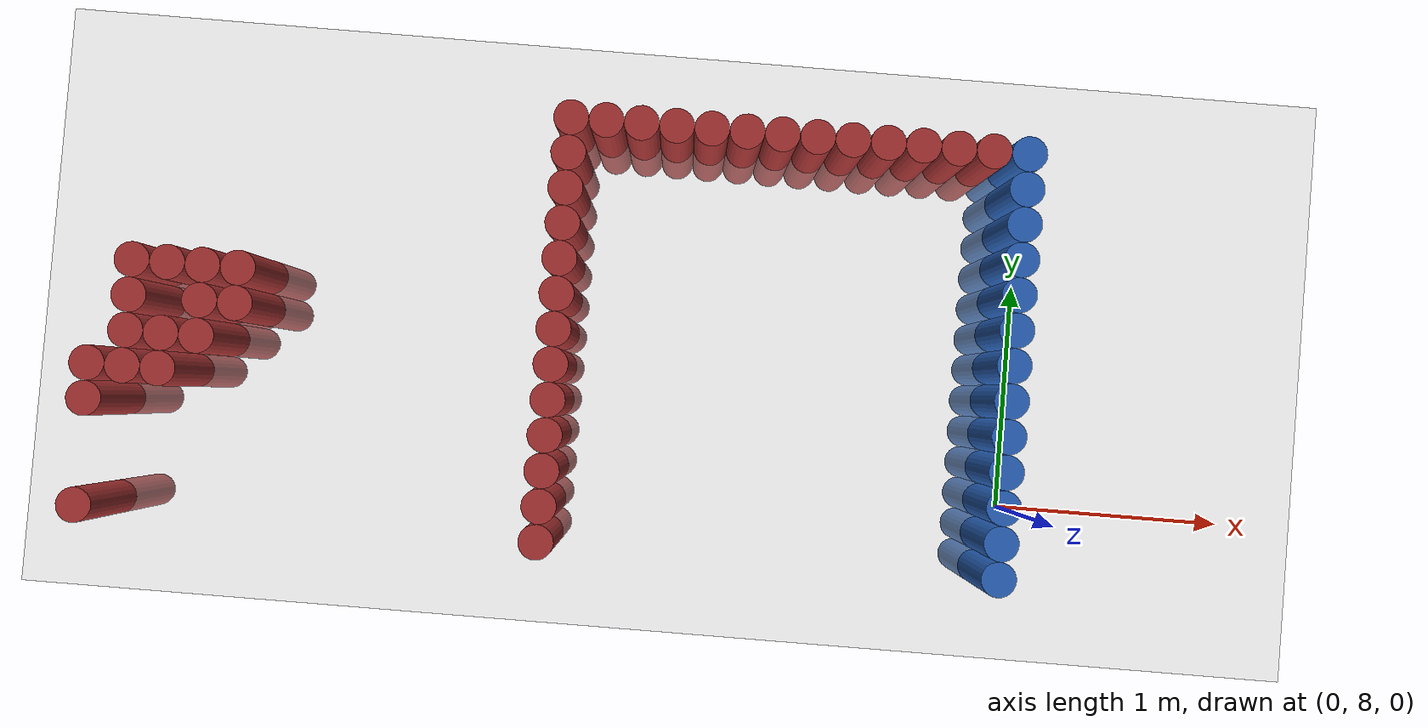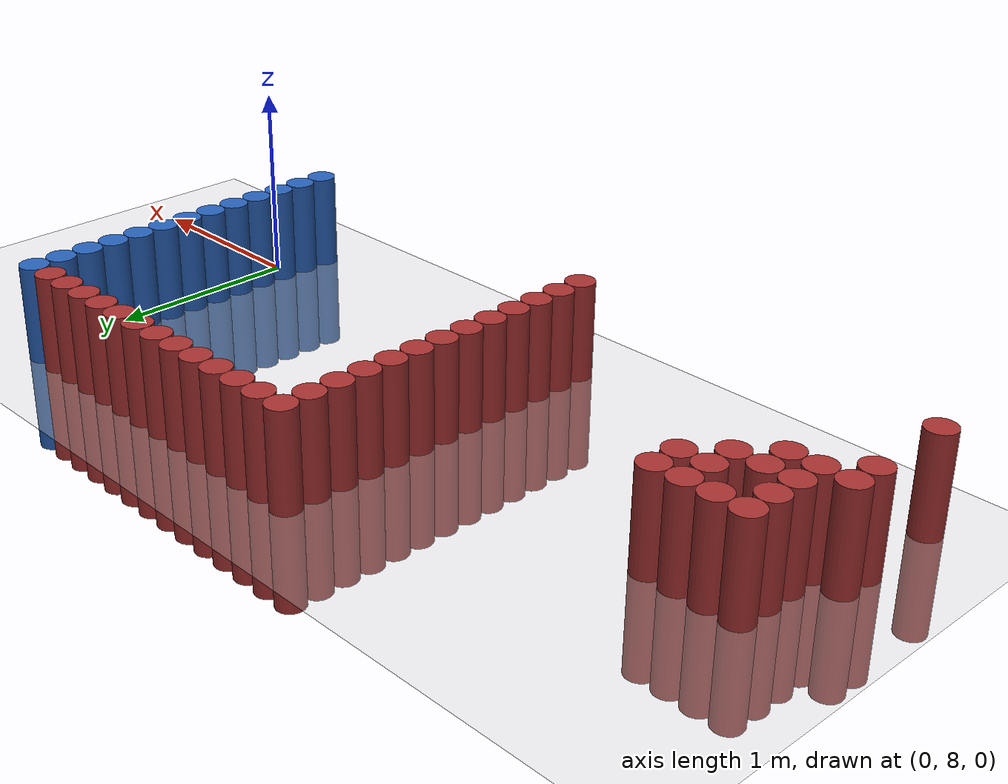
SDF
<sdf version="1.6">
 <world name="default">
  <model name="ground_plane">
   <static>1</static>
   <link name="link">
    <collision name="collision">
     <geometry><plane><normal>0 0 1</normal><size>100 100</size></plane></geometry>
     <surface><friction><ode><mu>100</mu><mu2>50</mu2></ode></friction></surface>
    </collision>
    <visual name="visual">
     <cast_shadows>0</cast_shadows>
     <geometry><plane><normal>0 0 1</normal><size>100 100</size></plane></geometry>
     <material>
      <script><uri>file://media/materials/scripts/gazebo.material</uri><name>Gazebo/Grey</name></script>
     </material>
    </visual>
   </link>
  </model>
  <model name="unit_cylinder_255">
   <static>1</static>
   <pose>-3.975000 7.725000 0.000000 0.000000 0.000000 0.000000</pose>
   <link name="link">
    <inertial>
     <mass>1</mass>
     <inertia><ixx>0.145833</ixx><ixy>0</ixy><ixz>0</ixz><iyy>0.145833</iyy><iyz>0</iyz><izz>0.125</izz></inertia>
    </inertial>
    <collision name="collision">
     <geometry><cylinder><radius>0.075000</radius><length>1</length></cylinder></geometry>
    </collision>
    <visual name="visual">
     <geometry><cylinder><radius>0.075000</radius><length>1</length></cylinder></geometry>
     <material>
      <ambient>0.648000 0.192000 0.192000 1</ambient>
      <diffuse>0.648000 0.192000 0.192000 1</diffuse>
     </material>
     <material>
      <script><name>Gazebo/Grey</name><uri>file://media/materials/scripts/gazebo.material</uri></script>
     </material>
    </visual>
   </link>
  </model>
  <model name="unit_cylinder_256">
   <static>1</static>
   <pose>-3.975000 8.175000 0.000000 0.000000 0.000000 0.000000</pose>
   <link name="link">
    <inertial>
     <mass>1</mass>
     <inertia><ixx>0.145833</ixx><ixy>0</ixy><ixz>0</ixz><iyy>0.145833</iyy><iyz>0</iyz><izz>0.125</izz></inertia>
    </inertial>
    <collision name="collision">
     <geometry><cylinder><radius>0.075000</radius><length>1</length></cylinder></geometry>
    </collision>
    <visual name="visual">
     <geometry><cylinder><radius>0.075000</radius><length>1</length></cylinder></geometry>
     <material>
      <ambient>0.648000 0.192000 0.192000 1</ambient>
      <diffuse>0.648000 0.192000 0.192000 1</diffuse>
     </material>
     <material>
      <script><name>Gazebo/Grey</name><uri>file://media/materials/scripts/gazebo.material</uri></script>
     </material>
    </visual>
   </link>
  </model>
  <model name="unit_cylinder_257">
   <static>1</static>
   <pose>-3.975000 8.325000 0.000000 0.000000 0.000000 0.000000</pose>
   <link name="link">
    <inertial>
     <mass>1</mass>
     <inertia><ixx>0.145833</ixx><ixy>0</ixy><ixz>0</ixz><iyy>0.145833</iyy><iyz>0</iyz><izz>0.125</izz></inertia>
    </inertial>
    <collision name="collision">
     <geometry><cylinder><radius>0.075000</radius><length>1</length></cylinder></geometry>
    </collision>
    <visual name="visual">
     <geometry><cylinder><radius>0.075000</radius><length>1</length></cylinder></geometry>
     <material>
      <ambient>0.648000 0.192000 0.192000 1</ambient>
      <diffuse>0.648000 0.192000 0.192000 1</diffuse>
     </material>
     <material>
      <script><name>Gazebo/Grey</name><uri>file://media/materials/scripts/gazebo.material</uri></script>
     </material>
    </visual>
   </link>
  </model>
  <model name="unit_cylinder_264">
   <static>1</static>
   <pose>-3.825000 8.325000 0.000000 0.000000 0.000000 0.000000</pose>
   <link name="link">
    <inertial>
     <mass>1</mass>
     <inertia><ixx>0.145833</ixx><ixy>0</ixy><ixz>0</ixz><iyy>0.145833</iyy><iyz>0</iyz><izz>0.125</izz></inertia>
    </inertial>
    <collision name="collision">
     <geometry><cylinder><radius>0.075000</radius><length>1</length></cylinder></geometry>
    </collision>
    <visual name="visual">
     <geometry><cylinder><radius>0.075000</radius><length>1</length></cylinder></geometry>
     <material>
      <ambient>0.648000 0.192000 0.192000 1</ambient>
      <diffuse>0.648000 0.192000 0.192000 1</diffuse>
     </material>
     <material>
      <script><name>Gazebo/Grey</name><uri>file://media/materials/scripts/gazebo.material</uri></script>
     </material>
    </visual>
   </link>
  </model>
  <model name="unit_cylinder_265">
   <static>1</static>
   <pose>-3.825000 8.475000 0.000000 0.000000 0.000000 0.000000</pose>
   <link name="link">
    <inertial>
     <mass>1</mass>
     <inertia><ixx>0.145833</ixx><ixy>0</ixy><ixz>0</ixz><iyy>0.145833</iyy><iyz>0</iyz><izz>0.125</izz></inertia>
    </inertial>
    <collision name="collision">
     <geometry><cylinder><radius>0.075000</radius><length>1</length></cylinder></geometry>
    </collision>
    <visual name="visual">
     <geometry><cylinder><radius>0.075000</radius><length>1</length></cylinder></geometry>
     <material>
      <ambient>0.648000 0.192000 0.192000 1</ambient>
      <diffuse>0.648000 0.192000 0.192000 1</diffuse>
     </material>
     <material>
      <script><name>Gazebo/Grey</name><uri>file://media/materials/scripts/gazebo.material</uri></script>
     </material>
    </visual>
   </link>
  </model>
  <model name="unit_cylinder_266">
   <static>1</static>
   <pose>-3.825000 8.625000 0.000000 0.000000 0.000000 0.000000</pose>
   <link name="link">
    <inertial>
     <mass>1</mass>
     <inertia><ixx>0.145833</ixx><ixy>0</ixy><ixz>0</ixz><iyy>0.145833</iyy><iyz>0</iyz><izz>0.125</izz></inertia>
    </inertial>
    <collision name="collision">
     <geometry><cylinder><radius>0.075000</radius><length>1</length></cylinder></geometry>
    </collision>
    <visual name="visual">
     <geometry><cylinder><radius>0.075000</radius><length>1</length></cylinder></geometry>
     <material>
      <ambient>0.648000 0.192000 0.192000 1</ambient>
      <diffuse>0.648000 0.192000 0.192000 1</diffuse>
     </material>
     <material>
      <script><name>Gazebo/Grey</name><uri>file://media/materials/scripts/gazebo.material</uri></script>
     </material>
    </visual>
   </link>
  </model>
  <model name="unit_cylinder_267">
   <static>1</static>
   <pose>-3.825000 8.775000 0.000000 0.000000 0.000000 0.000000</pose>
   <link name="link">
    <inertial>
     <mass>1</mass>
     <inertia><ixx>0.145833</ixx><ixy>0</ixy><ixz>0</ixz><iyy>0.145833</iyy><iyz>0</iyz><izz>0.125</izz></inertia>
    </inertial>
    <collision name="collision">
     <geometry><cylinder><radius>0.075000</radius><length>1</length></cylinder></geometry>
    </collision>
    <visual name="visual">
     <geometry><cylinder><radius>0.075000</radius><length>1</length></cylinder></geometry>
     <material>
      <ambient>0.648000 0.192000 0.192000 1</ambient>
      <diffuse>0.648000 0.192000 0.192000 1</diffuse>
     </material>
     <material>
      <script><name>Gazebo/Grey</name><uri>file://media/materials/scripts/gazebo.material</uri></script>
     </material>
    </visual>
   </link>
  </model>
  <model name="unit_cylinder_270">
   <static>1</static>
   <pose>-3.675000 8.325000 0.000000 0.000000 0.000000 0.000000</pose>
   <link name="link">
    <inertial>
     <mass>1</mass>
     <inertia><ixx>0.145833</ixx><ixy>0</ixy><ixz>0</ixz><iyy>0.145833</iyy><iyz>0</iyz><izz>0.125</izz></inertia>
    </inertial>
    <collision name="collision">
     <geometry><cylinder><radius>0.075000</radius><length>1</length></cylinder></geometry>
    </collision>
    <visual name="visual">
     <geometry><cylinder><radius>0.075000</radius><length>1</length></cylinder></geometry>
     <material>
      <ambient>0.648000 0.192000 0.192000 1</ambient>
      <diffuse>0.648000 0.192000 0.192000 1</diffuse>
     </material>
     <material>
      <script><name>Gazebo/Grey</name><uri>file://media/materials/scripts/gazebo.material</uri></script>
     </material>
    </visual>
   </link>
  </model>
  <model name="unit_cylinder_271">
   <static>1</static>
   <pose>-3.675000 8.475000 0.000000 0.000000 0.000000 0.000000</pose>
   <link name="link">
    <inertial>
     <mass>1</mass>
     <inertia><ixx>0.145833</ixx><ixy>0</ixy><ixz>0</ixz><iyy>0.145833</iyy><iyz>0</iyz><izz>0.125</izz></inertia>
    </inertial>
    <collision name="collision">
     <geometry><cylinder><radius>0.075000</radius><length>1</length></cylinder></geometry>
    </collision>
    <visual name="visual">
     <geometry><cylinder><radius>0.075000</radius><length>1</length></cylinder></geometry>
     <material>
      <ambient>0.648000 0.192000 0.192000 1</ambient>
      <diffuse>0.648000 0.192000 0.192000 1</diffuse>
     </material>
     <material>
      <script><name>Gazebo/Grey</name><uri>file://media/materials/scripts/gazebo.material</uri></script>
     </material>
    </visual>
   </link>
  </model>
  <model name="unit_cylinder_272">
   <static>1</static>
   <pose>-3.675000 8.775000 0.000000 0.000000 0.000000 0.000000</pose>
   <link name="link">
    <inertial>
     <mass>1</mass>
     <inertia><ixx>0.145833</ixx><ixy>0</ixy><ixz>0</ixz><iyy>0.145833</iyy><iyz>0</iyz><izz>0.125</izz></inertia>
    </inertial>
    <collision name="collision">
     <geometry><cylinder><radius>0.075000</radius><length>1</length></cylinder></geometry>
    </collision>
    <visual name="visual">
     <geometry><cylinder><radius>0.075000</radius><length>1</length></cylinder></geometry>
     <material>
      <ambient>0.648000 0.192000 0.192000 1</ambient>
      <diffuse>0.648000 0.192000 0.192000 1</diffuse>
     </material>
     <material>
      <script><name>Gazebo/Grey</name><uri>file://media/materials/scripts/gazebo.material</uri></script>
     </material>
    </visual>
   </link>
  </model>
  <model name="unit_cylinder_273">
   <static>1</static>
   <pose>-3.525000 8.475000 0.000000 0.000000 0.000000 0.000000</pose>
   <link name="link">
    <inertial>
     <mass>1</mass>
     <inertia><ixx>0.145833</ixx><ixy>0</ixy><ixz>0</ixz><iyy>0.145833</iyy><iyz>0</iyz><izz>0.125</izz></inertia>
    </inertial>
    <collision name="collision">
     <geometry><cylinder><radius>0.075000</radius><length>1</length></cylinder></geometry>
    </collision>
    <visual name="visual">
     <geometry><cylinder><radius>0.075000</radius><length>1</length></cylinder></geometry>
     <material>
      <ambient>0.648000 0.192000 0.192000 1</ambient>
      <diffuse>0.648000 0.192000 0.192000 1</diffuse>
     </material>
     <material>
      <script><name>Gazebo/Grey</name><uri>file://media/materials/scripts/gazebo.material</uri></script>
     </material>
    </visual>
   </link>
  </model>
  <model name="unit_cylinder_274">
   <static>1</static>
   <pose>-3.525000 8.625000 0.000000 0.000000 0.000000 0.000000</pose>
   <link name="link">
    <inertial>
     <mass>1</mass>
     <inertia><ixx>0.145833</ixx><ixy>0</ixy><ixz>0</ixz><iyy>0.145833</iyy><iyz>0</iyz><izz>0.125</izz></inertia>
    </inertial>
    <collision name="collision">
     <geometry><cylinder><radius>0.075000</radius><length>1</length></cylinder></geometry>
    </collision>
    <visual name="visual">
     <geometry><cylinder><radius>0.075000</radius><length>1</length></cylinder></geometry>
     <material>
      <ambient>0.648000 0.192000 0.192000 1</ambient>
      <diffuse>0.648000 0.192000 0.192000 1</diffuse>
     </material>
     <material>
      <script><name>Gazebo/Grey</name><uri>file://media/materials/scripts/gazebo.material</uri></script>
     </material>
    </visual>
   </link>
  </model>
  <model name="unit_cylinder_275">
   <static>1</static>
   <pose>-3.525000 8.775000 0.000000 0.000000 0.000000 0.000000</pose>
   <link name="link">
    <inertial>
     <mass>1</mass>
     <inertia><ixx>0.145833</ixx><ixy>0</ixy><ixz>0</ixz><iyy>0.145833</iyy><iyz>0</iyz><izz>0.125</izz></inertia>
    </inertial>
    <collision name="collision">
     <geometry><cylinder><radius>0.075000</radius><length>1</length></cylinder></geometry>
    </collision>
    <visual name="visual">
     <geometry><cylinder><radius>0.075000</radius><length>1</length></cylinder></geometry>
     <material>
      <ambient>0.648000 0.192000 0.192000 1</ambient>
      <diffuse>0.648000 0.192000 0.192000 1</diffuse>
     </material>
     <material>
      <script><name>Gazebo/Grey</name><uri>file://media/materials/scripts/gazebo.material</uri></script>
     </material>
    </visual>
   </link>
  </model>
  <model name="unit_cylinder_276">
   <static>1</static>
   <pose>-3.375000 8.625000 0.000000 0.000000 0.000000 0.000000</pose>
   <link name="link">
    <inertial>
     <mass>1</mass>
     <inertia><ixx>0.145833</ixx><ixy>0</ixy><ixz>0</ixz><iyy>0.145833</iyy><iyz>0</iyz><izz>0.125</izz></inertia>
    </inertial>
    <collision name="collision">
     <geometry><cylinder><radius>0.075000</radius><length>1</length></cylinder></geometry>
    </collision>
    <visual name="visual">
     <geometry><cylinder><radius>0.075000</radius><length>1</length></cylinder></geometry>
     <material>
      <ambient>0.648000 0.192000 0.192000 1</ambient>
      <diffuse>0.648000 0.192000 0.192000 1</diffuse>
     </material>
     <material>
      <script><name>Gazebo/Grey</name><uri>file://media/materials/scripts/gazebo.material</uri></script>
     </material>
    </visual>
   </link>
  </model>
  <model name="unit_cylinder_277">
   <static>1</static>
   <pose>-3.375000 8.775000 0.000000 0.000000 0.000000 0.000000</pose>
   <link name="link">
    <inertial>
     <mass>1</mass>
     <inertia><ixx>0.145833</ixx><ixy>0</ixy><ixz>0</ixz><iyy>0.145833</iyy><iyz>0</iyz><izz>0.125</izz></inertia>
    </inertial>
    <collision name="collision">
     <geometry><cylinder><radius>0.075000</radius><length>1</length></cylinder></geometry>
    </collision>
    <visual name="visual">
     <geometry><cylinder><radius>0.075000</radius><length>1</length></cylinder></geometry>
     <material>
      <ambient>0.648000 0.192000 0.192000 1</ambient>
      <diffuse>0.648000 0.192000 0.192000 1</diffuse>
     </material>
     <material>
      <script><name>Gazebo/Grey</name><uri>file://media/materials/scripts/gazebo.material</uri></script>
     </material>
    </visual>
   </link>
  </model>
  <model name="unit_cylinder_299">
   <static>1</static>
   <pose>-2.025000 7.725000 0.000000 0.000000 0.000000 0.000000</pose>
   <link name="link">
    <inertial>
     <mass>1</mass>
     <inertia><ixx>0.145833</ixx><ixy>0</ixy><ixz>0</ixz><iyy>0.145833</iyy><iyz>0</iyz><izz>0.125</izz></inertia>
    </inertial>
    <collision name="collision">
     <geometry><cylinder><radius>0.075000</radius><length>1</length></cylinder></geometry>
    </collision>
    <visual name="visual">
     <geometry><cylinder><radius>0.075000</radius><length>1</length></cylinder></geometry>
     <material>
      <ambient>0.648000 0.192000 0.192000 1</ambient>
      <diffuse>0.648000 0.192000 0.192000 1</diffuse>
     </material>
     <material>
      <script><name>Gazebo/Grey</name><uri>file://media/materials/scripts/gazebo.material</uri></script>
     </material>
    </visual>
   </link>
  </model>
  <model name="unit_cylinder_300">
   <static>1</static>
   <pose>-2.025000 7.875000 0.000000 0.000000 0.000000 0.000000</pose>
   <link name="link">
    <inertial>
     <mass>1</mass>
     <inertia><ixx>0.145833</ixx><ixy>0</ixy><ixz>0</ixz><iyy>0.145833</iyy><iyz>0</iyz><izz>0.125</izz></inertia>
    </inertial>
    <collision name="collision">
     <geometry><cylinder><radius>0.075000</radius><length>1</length></cylinder></geometry>
    </collision>
    <visual name="visual">
     <geometry><cylinder><radius>0.075000</radius><length>1</length></cylinder></geometry>
     <material>
      <ambient>0.648000 0.192000 0.192000 1</ambient>
      <diffuse>0.648000 0.192000 0.192000 1</diffuse>
     </material>
     <material>
      <script><name>Gazebo/Grey</name><uri>file://media/materials/scripts/gazebo.material</uri></script>
     </material>
    </visual>
   </link>
  </model>
  <model name="unit_cylinder_301">
   <static>1</static>
   <pose>-2.025000 8.025000 0.000000 0.000000 0.000000 0.000000</pose>
   <link name="link">
    <inertial>
     <mass>1</mass>
     <inertia><ixx>0.145833</ixx><ixy>0</ixy><ixz>0</ixz><iyy>0.145833</iyy><iyz>0</iyz><izz>0.125</izz></inertia>
    </inertial>
    <collision name="collision">
     <geometry><cylinder><radius>0.075000</radius><length>1</length></cylinder></geometry>
    </collision>
    <visual name="visual">
     <geometry><cylinder><radius>0.075000</radius><length>1</length></cylinder></geometry>
     <material>
      <ambient>0.648000 0.192000 0.192000 1</ambient>
      <diffuse>0.648000 0.192000 0.192000 1</diffuse>
     </material>
     <material>
      <script><name>Gazebo/Grey</name><uri>file://media/materials/scripts/gazebo.material</uri></script>
     </material>
    </visual>
   </link>
  </model>
  <model name="unit_cylinder_302">
   <static>1</static>
   <pose>-2.025000 8.175000 0.000000 0.000000 0.000000 0.000000</pose>
   <link name="link">
    <inertial>
     <mass>1</mass>
     <inertia><ixx>0.145833</ixx><ixy>0</ixy><ixz>0</ixz><iyy>0.145833</iyy><iyz>0</iyz><izz>0.125</izz></inertia>
    </inertial>
    <collision name="collision">
     <geometry><cylinder><radius>0.075000</radius><length>1</length></cylinder></geometry>
    </collision>
    <visual name="visual">
     <geometry><cylinder><radius>0.075000</radius><length>1</length></cylinder></geometry>
     <material>
      <ambient>0.648000 0.192000 0.192000 1</ambient>
      <diffuse>0.648000 0.192000 0.192000 1</diffuse>
     </material>
     <material>
      <script><name>Gazebo/Grey</name><uri>file://media/materials/scripts/gazebo.material</uri></script>
     </material>
    </visual>
   </link>
  </model>
  <model name="unit_cylinder_303">
   <static>1</static>
   <pose>-2.025000 8.325000 0.000000 0.000000 0.000000 0.000000</pose>
   <link name="link">
    <inertial>
     <mass>1</mass>
     <inertia><ixx>0.145833</ixx><ixy>0</ixy><ixz>0</ixz><iyy>0.145833</iyy><iyz>0</iyz><izz>0.125</izz></inertia>
    </inertial>
    <collision name="collision">
     <geometry><cylinder><radius>0.075000</radius><length>1</length></cylinder></geometry>
    </collision>
    <visual name="visual">
     <geometry><cylinder><radius>0.075000</radius><length>1</length></cylinder></geometry>
     <material>
      <ambient>0.648000 0.192000 0.192000 1</ambient>
      <diffuse>0.648000 0.192000 0.192000 1</diffuse>
     </material>
     <material>
      <script><name>Gazebo/Grey</name><uri>file://media/materials/scripts/gazebo.material</uri></script>
     </material>
    </visual>
   </link>
  </model>
  <model name="unit_cylinder_304">
   <static>1</static>
   <pose>-2.025000 8.475000 0.000000 0.000000 0.000000 0.000000</pose>
   <link name="link">
    <inertial>
     <mass>1</mass>
     <inertia><ixx>0.145833</ixx><ixy>0</ixy><ixz>0</ixz><iyy>0.145833</iyy><iyz>0</iyz><izz>0.125</izz></inertia>
    </inertial>
    <collision name="collision">
     <geometry><cylinder><radius>0.075000</radius><length>1</length></cylinder></geometry>
    </collision>
    <visual name="visual">
     <geometry><cylinder><radius>0.075000</radius><length>1</length></cylinder></geometry>
     <material>
      <ambient>0.648000 0.192000 0.192000 1</ambient>
      <diffuse>0.648000 0.192000 0.192000 1</diffuse>
     </material>
     <material>
      <script><name>Gazebo/Grey</name><uri>file://media/materials/scripts/gazebo.material</uri></script>
     </material>
    </visual>
   </link>
  </model>
  <model name="unit_cylinder_305">
   <static>1</static>
   <pose>-2.025000 8.625000 0.000000 0.000000 0.000000 0.000000</pose>
   <link name="link">
    <inertial>
     <mass>1</mass>
     <inertia><ixx>0.145833</ixx><ixy>0</ixy><ixz>0</ixz><iyy>0.145833</iyy><iyz>0</iyz><izz>0.125</izz></inertia>
    </inertial>
    <collision name="collision">
     <geometry><cylinder><radius>0.075000</radius><length>1</length></cylinder></geometry>
    </collision>
    <visual name="visual">
     <geometry><cylinder><radius>0.075000</radius><length>1</length></cylinder></geometry>
     <material>
      <ambient>0.648000 0.192000 0.192000 1</ambient>
      <diffuse>0.648000 0.192000 0.192000 1</diffuse>
     </material>
     <material>
      <script><name>Gazebo/Grey</name><uri>file://media/materials/scripts/gazebo.material</uri></script>
     </material>
    </visual>
   </link>
  </model>
  <model name="unit_cylinder_306">
   <static>1</static>
   <pose>-2.025000 8.775000 0.000000 0.000000 0.000000 0.000000</pose>
   <link name="link">
    <inertial>
     <mass>1</mass>
     <inertia><ixx>0.145833</ixx><ixy>0</ixy><ixz>0</ixz><iyy>0.145833</iyy><iyz>0</iyz><izz>0.125</izz></inertia>
    </inertial>
    <collision name="collision">
     <geometry><cylinder><radius>0.075000</radius><length>1</length></cylinder></geometry>
    </collision>
    <visual name="visual">
     <geometry><cylinder><radius>0.075000</radius><length>1</length></cylinder></geometry>
     <material>
      <ambient>0.648000 0.192000 0.192000 1</ambient>
      <diffuse>0.648000 0.192000 0.192000 1</diffuse>
     </material>
     <material>
      <script><name>Gazebo/Grey</name><uri>file://media/materials/scripts/gazebo.material</uri></script>
     </material>
    </visual>
   </link>
  </model>
  <model name="unit_cylinder_307">
   <static>1</static>
   <pose>-2.025000 8.925000 0.000000 0.000000 0.000000 0.000000</pose>
   <link name="link">
    <inertial>
     <mass>1</mass>
     <inertia><ixx>0.145833</ixx><ixy>0</ixy><ixz>0</ixz><iyy>0.145833</iyy><iyz>0</iyz><izz>0.125</izz></inertia>
    </inertial>
    <collision name="collision">
     <geometry><cylinder><radius>0.075000</radius><length>1</length></cylinder></geometry>
    </collision>
    <visual name="visual">
     <geometry><cylinder><radius>0.075000</radius><length>1</length></cylinder></geometry>
     <material>
      <ambient>0.648000 0.192000 0.192000 1</ambient>
      <diffuse>0.648000 0.192000 0.192000 1</diffuse>
     </material>
     <material>
      <script><name>Gazebo/Grey</name><uri>file://media/materials/scripts/gazebo.material</uri></script>
     </material>
    </visual>
   </link>
  </model>
  <model name="unit_cylinder_308">
   <static>1</static>
   <pose>-2.025000 9.075000 0.000000 0.000000 0.000000 0.000000</pose>
   <link name="link">
    <inertial>
     <mass>1</mass>
     <inertia><ixx>0.145833</ixx><ixy>0</ixy><ixz>0</ixz><iyy>0.145833</iyy><iyz>0</iyz><izz>0.125</izz></inertia>
    </inertial>
    <collision name="collision">
     <geometry><cylinder><radius>0.075000</radius><length>1</length></cylinder></geometry>
    </collision>
    <visual name="visual">
     <geometry><cylinder><radius>0.075000</radius><length>1</length></cylinder></geometry>
     <material>
      <ambient>0.648000 0.192000 0.192000 1</ambient>
      <diffuse>0.648000 0.192000 0.192000 1</diffuse>
     </material>
     <material>
      <script><name>Gazebo/Grey</name><uri>file://media/materials/scripts/gazebo.material</uri></script>
     </material>
    </visual>
   </link>
  </model>
  <model name="unit_cylinder_309">
   <static>1</static>
   <pose>-2.025000 9.225000 0.000000 0.000000 0.000000 0.000000</pose>
   <link name="link">
    <inertial>
     <mass>1</mass>
     <inertia><ixx>0.145833</ixx><ixy>0</ixy><ixz>0</ixz><iyy>0.145833</iyy><iyz>0</iyz><izz>0.125</izz></inertia>
    </inertial>
    <collision name="collision">
     <geometry><cylinder><radius>0.075000</radius><length>1</length></cylinder></geometry>
    </collision>
    <visual name="visual">
     <geometry><cylinder><radius>0.075000</radius><length>1</length></cylinder></geometry>
     <material>
      <ambient>0.648000 0.192000 0.192000 1</ambient>
      <diffuse>0.648000 0.192000 0.192000 1</diffuse>
     </material>
     <material>
      <script><name>Gazebo/Grey</name><uri>file://media/materials/scripts/gazebo.material</uri></script>
     </material>
    </visual>
   </link>
  </model>
  <model name="unit_cylinder_310">
   <static>1</static>
   <pose>-2.025000 9.375000 0.000000 0.000000 0.000000 0.000000</pose>
   <link name="link">
    <inertial>
     <mass>1</mass>
     <inertia><ixx>0.145833</ixx><ixy>0</ixy><ixz>0</ixz><iyy>0.145833</iyy><iyz>0</iyz><izz>0.125</izz></inertia>
    </inertial>
    <collision name="collision">
     <geometry><cylinder><radius>0.075000</radius><length>1</length></cylinder></geometry>
    </collision>
    <visual name="visual">
     <geometry><cylinder><radius>0.075000</radius><length>1</length></cylinder></geometry>
     <material>
      <ambient>0.648000 0.192000 0.192000 1</ambient>
      <diffuse>0.648000 0.192000 0.192000 1</diffuse>
     </material>
     <material>
      <script><name>Gazebo/Grey</name><uri>file://media/materials/scripts/gazebo.material</uri></script>
     </material>
    </visual>
   </link>
  </model>
  <model name="unit_cylinder_311">
   <static>1</static>
   <pose>-2.025000 9.525000 0.000000 0.000000 0.000000 0.000000</pose>
   <link name="link">
    <inertial>
     <mass>1</mass>
     <inertia><ixx>0.145833</ixx><ixy>0</ixy><ixz>0</ixz><iyy>0.145833</iyy><iyz>0</iyz><izz>0.125</izz></inertia>
    </inertial>
    <collision name="collision">
     <geometry><cylinder><radius>0.075000</radius><length>1</length></cylinder></geometry>
    </collision>
    <visual name="visual">
     <geometry><cylinder><radius>0.075000</radius><length>1</length></cylinder></geometry>
     <material>
      <ambient>0.648000 0.192000 0.192000 1</ambient>
      <diffuse>0.648000 0.192000 0.192000 1</diffuse>
     </material>
     <material>
      <script><name>Gazebo/Grey</name><uri>file://media/materials/scripts/gazebo.material</uri></script>
     </material>
    </visual>
   </link>
  </model>
  <model name="unit_cylinder_313">
   <static>1</static>
   <pose>-1.875000 9.525000 0.000000 0.000000 0.000000 0.000000</pose>
   <link name="link">
    <inertial>
     <mass>1</mass>
     <inertia><ixx>0.145833</ixx><ixy>0</ixy><ixz>0</ixz><iyy>0.145833</iyy><iyz>0</iyz><izz>0.125</izz></inertia>
    </inertial>
    <collision name="collision">
     <geometry><cylinder><radius>0.075000</radius><length>1</length></cylinder></geometry>
    </collision>
    <visual name="visual">
     <geometry><cylinder><radius>0.075000</radius><length>1</length></cylinder></geometry>
     <material>
      <ambient>0.648000 0.192000 0.192000 1</ambient>
      <diffuse>0.648000 0.192000 0.192000 1</diffuse>
     </material>
     <material>
      <script><name>Gazebo/Grey</name><uri>file://media/materials/scripts/gazebo.material</uri></script>
     </material>
    </visual>
   </link>
  </model>
  <model name="unit_cylinder_315">
   <static>1</static>
   <pose>-1.725000 9.525000 0.000000 0.000000 0.000000 0.000000</pose>
   <link name="link">
    <inertial>
     <mass>1</mass>
     <inertia><ixx>0.145833</ixx><ixy>0</ixy><ixz>0</ixz><iyy>0.145833</iyy><iyz>0</iyz><izz>0.125</izz></inertia>
    </inertial>
    <collision name="collision">
     <geometry><cylinder><radius>0.075000</radius><length>1</length></cylinder></geometry>
    </collision>
    <visual name="visual">
     <geometry><cylinder><radius>0.075000</radius><length>1</length></cylinder></geometry>
     <material>
      <ambient>0.648000 0.192000 0.192000 1</ambient>
      <diffuse>0.648000 0.192000 0.192000 1</diffuse>
     </material>
     <material>
      <script><name>Gazebo/Grey</name><uri>file://media/materials/scripts/gazebo.material</uri></script>
     </material>
    </visual>
   </link>
  </model>
  <model name="unit_cylinder_317">
   <static>1</static>
   <pose>-1.575000 9.525000 0.000000 0.000000 0.000000 0.000000</pose>
   <link name="link">
    <inertial>
     <mass>1</mass>
     <inertia><ixx>0.145833</ixx><ixy>0</ixy><ixz>0</ixz><iyy>0.145833</iyy><iyz>0</iyz><izz>0.125</izz></inertia>
    </inertial>
    <collision name="collision">
     <geometry><cylinder><radius>0.075000</radius><length>1</length></cylinder></geometry>
    </collision>
    <visual name="visual">
     <geometry><cylinder><radius>0.075000</radius><length>1</length></cylinder></geometry>
     <material>
      <ambient>0.648000 0.192000 0.192000 1</ambient>
      <diffuse>0.648000 0.192000 0.192000 1</diffuse>
     </material>
     <material>
      <script><name>Gazebo/Grey</name><uri>file://media/materials/scripts/gazebo.material</uri></script>
     </material>
    </visual>
   </link>
  </model>
  <model name="unit_cylinder_319">
   <static>1</static>
   <pose>-1.425000 9.525000 0.000000 0.000000 0.000000 0.000000</pose>
   <link name="link">
    <inertial>
     <mass>1</mass>
     <inertia><ixx>0.145833</ixx><ixy>0</ixy><ixz>0</ixz><iyy>0.145833</iyy><iyz>0</iyz><izz>0.125</izz></inertia>
    </inertial>
    <collision name="collision">
     <geometry><cylinder><radius>0.075000</radius><length>1</length></cylinder></geometry>
    </collision>
    <visual name="visual">
     <geometry><cylinder><radius>0.075000</radius><length>1</length></cylinder></geometry>
     <material>
      <ambient>0.648000 0.192000 0.192000 1</ambient>
      <diffuse>0.648000 0.192000 0.192000 1</diffuse>
     </material>
     <material>
      <script><name>Gazebo/Grey</name><uri>file://media/materials/scripts/gazebo.material</uri></script>
     </material>
    </visual>
   </link>
  </model>
  <model name="unit_cylinder_321">
   <static>1</static>
   <pose>-1.275000 9.525000 0.000000 0.000000 0.000000 0.000000</pose>
   <link name="link">
    <inertial>
     <mass>1</mass>
     <inertia><ixx>0.145833</ixx><ixy>0</ixy><ixz>0</ixz><iyy>0.145833</iyy><iyz>0</iyz><izz>0.125</izz></inertia>
    </inertial>
    <collision name="collision">
     <geometry><cylinder><radius>0.075000</radius><length>1</length></cylinder></geometry>
    </collision>
    <visual name="visual">
     <geometry><cylinder><radius>0.075000</radius><length>1</length></cylinder></geometry>
     <material>
      <ambient>0.648000 0.192000 0.192000 1</ambient>
      <diffuse>0.648000 0.192000 0.192000 1</diffuse>
     </material>
     <material>
      <script><name>Gazebo/Grey</name><uri>file://media/materials/scripts/gazebo.material</uri></script>
     </material>
    </visual>
   </link>
  </model>
  <model name="unit_cylinder_323">
   <static>1</static>
   <pose>-1.125000 9.525000 0.000000 0.000000 0.000000 0.000000</pose>
   <link name="link">
    <inertial>
     <mass>1</mass>
     <inertia><ixx>0.145833</ixx><ixy>0</ixy><ixz>0</ixz><iyy>0.145833</iyy><iyz>0</iyz><izz>0.125</izz></inertia>
    </inertial>
    <collision name="collision">
     <geometry><cylinder><radius>0.075000</radius><length>1</length></cylinder></geometry>
    </collision>
    <visual name="visual">
     <geometry><cylinder><radius>0.075000</radius><length>1</length></cylinder></geometry>
     <material>
      <ambient>0.648000 0.192000 0.192000 1</ambient>
      <diffuse>0.648000 0.192000 0.192000 1</diffuse>
     </material>
     <material>
      <script><name>Gazebo/Grey</name><uri>file://media/materials/scripts/gazebo.material</uri></script>
     </material>
    </visual>
   </link>
  </model>
  <model name="unit_cylinder_325">
   <static>1</static>
   <pose>-0.975000 9.525000 0.000000 0.000000 0.000000 0.000000</pose>
   <link name="link">
    <inertial>
     <mass>1</mass>
     <inertia><ixx>0.145833</ixx><ixy>0</ixy><ixz>0</ixz><iyy>0.145833</iyy><iyz>0</iyz><izz>0.125</izz></inertia>
    </inertial>
    <collision name="collision">
     <geometry><cylinder><radius>0.075000</radius><length>1</length></cylinder></geometry>
    </collision>
    <visual name="visual">
     <geometry><cylinder><radius>0.075000</radius><length>1</length></cylinder></geometry>
     <material>
      <ambient>0.648000 0.192000 0.192000 1</ambient>
      <diffuse>0.648000 0.192000 0.192000 1</diffuse>
     </material>
     <material>
      <script><name>Gazebo/Grey</name><uri>file://media/materials/scripts/gazebo.material</uri></script>
     </material>
    </visual>
   </link>
  </model>
  <model name="unit_cylinder_327">
   <static>1</static>
   <pose>-0.825000 9.525000 0.000000 0.000000 0.000000 0.000000</pose>
   <link name="link">
    <inertial>
     <mass>1</mass>
     <inertia><ixx>0.145833</ixx><ixy>0</ixy><ixz>0</ixz><iyy>0.145833</iyy><iyz>0</iyz><izz>0.125</izz></inertia>
    </inertial>
    <collision name="collision">
     <geometry><cylinder><radius>0.075000</radius><length>1</length></cylinder></geometry>
    </collision>
    <visual name="visual">
     <geometry><cylinder><radius>0.075000</radius><length>1</length></cylinder></geometry>
     <material>
      <ambient>0.648000 0.192000 0.192000 1</ambient>
      <diffuse>0.648000 0.192000 0.192000 1</diffuse>
     </material>
     <material>
      <script><name>Gazebo/Grey</name><uri>file://media/materials/scripts/gazebo.material</uri></script>
     </material>
    </visual>
   </link>
  </model>
  <model name="unit_cylinder_329">
   <static>1</static>
   <pose>-0.675000 9.525000 0.000000 0.000000 0.000000 0.000000</pose>
   <link name="link">
    <inertial>
     <mass>1</mass>
     <inertia><ixx>0.145833</ixx><ixy>0</ixy><ixz>0</ixz><iyy>0.145833</iyy><iyz>0</iyz><izz>0.125</izz></inertia>
    </inertial>
    <collision name="collision">
     <geometry><cylinder><radius>0.075000</radius><length>1</length></cylinder></geometry>
    </collision>
    <visual name="visual">
     <geometry><cylinder><radius>0.075000</radius><length>1</length></cylinder></geometry>
     <material>
      <ambient>0.648000 0.192000 0.192000 1</ambient>
      <diffuse>0.648000 0.192000 0.192000 1</diffuse>
     </material>
     <material>
      <script><name>Gazebo/Grey</name><uri>file://media/materials/scripts/gazebo.material</uri></script>
     </material>
    </visual>
   </link>
  </model>
  <model name="unit_cylinder_331">
   <static>1</static>
   <pose>-0.525000 9.525000 0.000000 0.000000 0.000000 0.000000</pose>
   <link name="link">
    <inertial>
     <mass>1</mass>
     <inertia><ixx>0.145833</ixx><ixy>0</ixy><ixz>0</ixz><iyy>0.145833</iyy><iyz>0</iyz><izz>0.125</izz></inertia>
    </inertial>
    <collision name="collision">
     <geometry><cylinder><radius>0.075000</radius><length>1</length></cylinder></geometry>
    </collision>
    <visual name="visual">
     <geometry><cylinder><radius>0.075000</radius><length>1</length></cylinder></geometry>
     <material>
      <ambient>0.648000 0.192000 0.192000 1</ambient>
      <diffuse>0.648000 0.192000 0.192000 1</diffuse>
     </material>
     <material>
      <script><name>Gazebo/Grey</name><uri>file://media/materials/scripts/gazebo.material</uri></script>
     </material>
    </visual>
   </link>
  </model>
  <model name="unit_cylinder_333">
   <static>1</static>
   <pose>-0.375000 9.525000 0.000000 0.000000 0.000000 0.000000</pose>
   <link name="link">
    <inertial>
     <mass>1</mass>
     <inertia><ixx>0.145833</ixx><ixy>0</ixy><ixz>0</ixz><iyy>0.145833</iyy><iyz>0</iyz><izz>0.125</izz></inertia>
    </inertial>
    <collision name="collision">
     <geometry><cylinder><radius>0.075000</radius><length>1</length></cylinder></geometry>
    </collision>
    <visual name="visual">
     <geometry><cylinder><radius>0.075000</radius><length>1</length></cylinder></geometry>
     <material>
      <ambient>0.648000 0.192000 0.192000 1</ambient>
      <diffuse>0.648000 0.192000 0.192000 1</diffuse>
     </material>
     <material>
      <script><name>Gazebo/Grey</name><uri>file://media/materials/scripts/gazebo.material</uri></script>
     </material>
    </visual>
   </link>
  </model>
  <model name="unit_cylinder_335">
   <static>1</static>
   <pose>-0.225000 9.525000 0.000000 0.000000 0.000000 0.000000</pose>
   <link name="link">
    <inertial>
     <mass>1</mass>
     <inertia><ixx>0.145833</ixx><ixy>0</ixy><ixz>0</ixz><iyy>0.145833</iyy><iyz>0</iyz><izz>0.125</izz></inertia>
    </inertial>
    <collision name="collision">
     <geometry><cylinder><radius>0.075000</radius><length>1</length></cylinder></geometry>
    </collision>
    <visual name="visual">
     <geometry><cylinder><radius>0.075000</radius><length>1</length></cylinder></geometry>
     <material>
      <ambient>0.648000 0.192000 0.192000 1</ambient>
      <diffuse>0.648000 0.192000 0.192000 1</diffuse>
     </material>
     <material>
      <script><name>Gazebo/Grey</name><uri>file://media/materials/scripts/gazebo.material</uri></script>
     </material>
    </visual>
   </link>
  </model>
  <model name="unit_cylinder_353">
   <static>1</static>
   <pose>-0.075000 7.725000 0.000000 0.000000 0.000000 0.000000</pose>
   <link name="link">
    <inertial>
     <mass>1</mass>
     <inertia><ixx>0.145833</ixx><ixy>0</ixy><ixz>0</ixz><iyy>0.145833</iyy><iyz>0</iyz><izz>0.125</izz></inertia>
    </inertial>
    <collision name="collision">
     <geometry><cylinder><radius>0.075000</radius><length>1</length></cylinder></geometry>
    </collision>
    <visual name="visual">
     <geometry><cylinder><radius>0.075000</radius><length>1</length></cylinder></geometry>
     <material>
      <ambient>0.152000 0.379000 0.720000 1</ambient>
      <diffuse>0.152000 0.379000 0.720000 1</diffuse>
     </material>
     <material>
      <script><name>Gazebo/Grey</name><uri>file://media/materials/scripts/gazebo.material</uri></script>
     </material>
    </visual>
   </link>
  </model>
  <model name="unit_cylinder_354">
   <static>1</static>
   <pose>-0.075000 7.875000 0.000000 0.000000 0.000000 0.000000</pose>
   <link name="link">
    <inertial>
     <mass>1</mass>
     <inertia><ixx>0.145833</ixx><ixy>0</ixy><ixz>0</ixz><iyy>0.145833</iyy><iyz>0</iyz><izz>0.125</izz></inertia>
    </inertial>
    <collision name="collision">
     <geometry><cylinder><radius>0.075000</radius><length>1</length></cylinder></geometry>
    </collision>
    <visual name="visual">
     <geometry><cylinder><radius>0.075000</radius><length>1</length></cylinder></geometry>
     <material>
      <ambient>0.152000 0.379000 0.720000 1</ambient>
      <diffuse>0.152000 0.379000 0.720000 1</diffuse>
     </material>
     <material>
      <script><name>Gazebo/Grey</name><uri>file://media/materials/scripts/gazebo.material</uri></script>
     </material>
    </visual>
   </link>
  </model>
  <model name="unit_cylinder_355">
   <static>1</static>
   <pose>-0.075000 8.025000 0.000000 0.000000 0.000000 0.000000</pose>
   <link name="link">
    <inertial>
     <mass>1</mass>
     <inertia><ixx>0.145833</ixx><ixy>0</ixy><ixz>0</ixz><iyy>0.145833</iyy><iyz>0</iyz><izz>0.125</izz></inertia>
    </inertial>
    <collision name="collision">
     <geometry><cylinder><radius>0.075000</radius><length>1</length></cylinder></geometry>
    </collision>
    <visual name="visual">
     <geometry><cylinder><radius>0.075000</radius><length>1</length></cylinder></geometry>
     <material>
      <ambient>0.152000 0.379000 0.720000 1</ambient>
      <diffuse>0.152000 0.379000 0.720000 1</diffuse>
     </material>
     <material>
      <script><name>Gazebo/Grey</name><uri>file://media/materials/scripts/gazebo.material</uri></script>
     </material>
    </visual>
   </link>
  </model>
  <model name="unit_cylinder_356">
   <static>1</static>
   <pose>-0.075000 8.175000 0.000000 0.000000 0.000000 0.000000</pose>
   <link name="link">
    <inertial>
     <mass>1</mass>
     <inertia><ixx>0.145833</ixx><ixy>0</ixy><ixz>0</ixz><iyy>0.145833</iyy><iyz>0</iyz><izz>0.125</izz></inertia>
    </inertial>
    <collision name="collision">
     <geometry><cylinder><radius>0.075000</radius><length>1</length></cylinder></geometry>
    </collision>
    <visual name="visual">
     <geometry><cylinder><radius>0.075000</radius><length>1</length></cylinder></geometry>
     <material>
      <ambient>0.152000 0.379000 0.720000 1</ambient>
      <diffuse>0.152000 0.379000 0.720000 1</diffuse>
     </material>
     <material>
      <script><name>Gazebo/Grey</name><uri>file://media/materials/scripts/gazebo.material</uri></script>
     </material>
    </visual>
   </link>
  </model>
  <model name="unit_cylinder_357">
   <static>1</static>
   <pose>-0.075000 8.325000 0.000000 0.000000 0.000000 0.000000</pose>
   <link name="link">
    <inertial>
     <mass>1</mass>
     <inertia><ixx>0.145833</ixx><ixy>0</ixy><ixz>0</ixz><iyy>0.145833</iyy><iyz>0</iyz><izz>0.125</izz></inertia>
    </inertial>
    <collision name="collision">
     <geometry><cylinder><radius>0.075000</radius><length>1</length></cylinder></geometry>
    </collision>
    <visual name="visual">
     <geometry><cylinder><radius>0.075000</radius><length>1</length></cylinder></geometry>
     <material>
      <ambient>0.152000 0.379000 0.720000 1</ambient>
      <diffuse>0.152000 0.379000 0.720000 1</diffuse>
     </material>
     <material>
      <script><name>Gazebo/Grey</name><uri>file://media/materials/scripts/gazebo.material</uri></script>
     </material>
    </visual>
   </link>
  </model>
  <model name="unit_cylinder_358">
   <static>1</static>
   <pose>-0.075000 8.475000 0.000000 0.000000 0.000000 0.000000</pose>
   <link name="link">
    <inertial>
     <mass>1</mass>
     <inertia><ixx>0.145833</ixx><ixy>0</ixy><ixz>0</ixz><iyy>0.145833</iyy><iyz>0</iyz><izz>0.125</izz></inertia>
    </inertial>
    <collision name="collision">
     <geometry><cylinder><radius>0.075000</radius><length>1</length></cylinder></geometry>
    </collision>
    <visual name="visual">
     <geometry><cylinder><radius>0.075000</radius><length>1</length></cylinder></geometry>
     <material>
      <ambient>0.152000 0.379000 0.720000 1</ambient>
      <diffuse>0.152000 0.379000 0.720000 1</diffuse>
     </material>
     <material>
      <script><name>Gazebo/Grey</name><uri>file://media/materials/scripts/gazebo.material</uri></script>
     </material>
    </visual>
   </link>
  </model>
  <model name="unit_cylinder_359">
   <static>1</static>
   <pose>-0.075000 8.625000 0.000000 0.000000 0.000000 0.000000</pose>
   <link name="link">
    <inertial>
     <mass>1</mass>
     <inertia><ixx>0.145833</ixx><ixy>0</ixy><ixz>0</ixz><iyy>0.145833</iyy><iyz>0</iyz><izz>0.125</izz></inertia>
    </inertial>
    <collision name="collision">
     <geometry><cylinder><radius>0.075000</radius><length>1</length></cylinder></geometry>
    </collision>
    <visual name="visual">
     <geometry><cylinder><radius>0.075000</radius><length>1</length></cylinder></geometry>
     <material>
      <ambient>0.152000 0.379000 0.720000 1</ambient>
      <diffuse>0.152000 0.379000 0.720000 1</diffuse>
     </material>
     <material>
      <script><name>Gazebo/Grey</name><uri>file://media/materials/scripts/gazebo.material</uri></script>
     </material>
    </visual>
   </link>
  </model>
  <model name="unit_cylinder_360">
   <static>1</static>
   <pose>-0.075000 8.775000 0.000000 0.000000 0.000000 0.000000</pose>
   <link name="link">
    <inertial>
     <mass>1</mass>
     <inertia><ixx>0.145833</ixx><ixy>0</ixy><ixz>0</ixz><iyy>0.145833</iyy><iyz>0</iyz><izz>0.125</izz></inertia>
    </inertial>
    <collision name="collision">
     <geometry><cylinder><radius>0.075000</radius><length>1</length></cylinder></geometry>
    </collision>
    <visual name="visual">
     <geometry><cylinder><radius>0.075000</radius><length>1</length></cylinder></geometry>
     <material>
      <ambient>0.152000 0.379000 0.720000 1</ambient>
      <diffuse>0.152000 0.379000 0.720000 1</diffuse>
     </material>
     <material>
      <script><name>Gazebo/Grey</name><uri>file://media/materials/scripts/gazebo.material</uri></script>
     </material>
    </visual>
   </link>
  </model>
  <model name="unit_cylinder_361">
   <static>1</static>
   <pose>-0.075000 8.925000 0.000000 0.000000 0.000000 0.000000</pose>
   <link name="link">
    <inertial>
     <mass>1</mass>
     <inertia><ixx>0.145833</ixx><ixy>0</ixy><ixz>0</ixz><iyy>0.145833</iyy><iyz>0</iyz><izz>0.125</izz></inertia>
    </inertial>
    <collision name="collision">
     <geometry><cylinder><radius>0.075000</radius><length>1</length></cylinder></geometry>
    </collision>
    <visual name="visual">
     <geometry><cylinder><radius>0.075000</radius><length>1</length></cylinder></geometry>
     <material>
      <ambient>0.152000 0.379000 0.720000 1</ambient>
      <diffuse>0.152000 0.379000 0.720000 1</diffuse>
     </material>
     <material>
      <script><name>Gazebo/Grey</name><uri>file://media/materials/scripts/gazebo.material</uri></script>
     </material>
    </visual>
   </link>
  </model>
  <model name="unit_cylinder_362">
   <static>1</static>
   <pose>-0.075000 9.075000 0.000000 0.000000 0.000000 0.000000</pose>
   <link name="link">
    <inertial>
     <mass>1</mass>
     <inertia><ixx>0.145833</ixx><ixy>0</ixy><ixz>0</ixz><iyy>0.145833</iyy><iyz>0</iyz><izz>0.125</izz></inertia>
    </inertial>
    <collision name="collision">
     <geometry><cylinder><radius>0.075000</radius><length>1</length></cylinder></geometry>
    </collision>
    <visual name="visual">
     <geometry><cylinder><radius>0.075000</radius><length>1</length></cylinder></geometry>
     <material>
      <ambient>0.152000 0.379000 0.720000 1</ambient>
      <diffuse>0.152000 0.379000 0.720000 1</diffuse>
     </material>
     <material>
      <script><name>Gazebo/Grey</name><uri>file://media/materials/scripts/gazebo.material</uri></script>
     </material>
    </visual>
   </link>
  </model>
  <model name="unit_cylinder_363">
   <static>1</static>
   <pose>-0.075000 9.225000 0.000000 0.000000 0.000000 0.000000</pose>
   <link name="link">
    <inertial>
     <mass>1</mass>
     <inertia><ixx>0.145833</ixx><ixy>0</ixy><ixz>0</ixz><iyy>0.145833</iyy><iyz>0</iyz><izz>0.125</izz></inertia>
    </inertial>
    <collision name="collision">
     <geometry><cylinder><radius>0.075000</radius><length>1</length></cylinder></geometry>
    </collision>
    <visual name="visual">
     <geometry><cylinder><radius>0.075000</radius><length>1</length></cylinder></geometry>
     <material>
      <ambient>0.152000 0.379000 0.720000 1</ambient>
      <diffuse>0.152000 0.379000 0.720000 1</diffuse>
     </material>
     <material>
      <script><name>Gazebo/Grey</name><uri>file://media/materials/scripts/gazebo.material</uri></script>
     </material>
    </visual>
   </link>
  </model>
  <model name="unit_cylinder_364">
   <static>1</static>
   <pose>-0.075000 9.375000 0.000000 0.000000 0.000000 0.000000</pose>
   <link name="link">
    <inertial>
     <mass>1</mass>
     <inertia><ixx>0.145833</ixx><ixy>0</ixy><ixz>0</ixz><iyy>0.145833</iyy><iyz>0</iyz><izz>0.125</izz></inertia>
    </inertial>
    <collision name="collision">
     <geometry><cylinder><radius>0.075000</radius><length>1</length></cylinder></geometry>
    </collision>
    <visual name="visual">
     <geometry><cylinder><radius>0.075000</radius><length>1</length></cylinder></geometry>
     <material>
      <ambient>0.152000 0.379000 0.720000 1</ambient>
      <diffuse>0.152000 0.379000 0.720000 1</diffuse>
     </material>
     <material>
      <script><name>Gazebo/Grey</name><uri>file://media/materials/scripts/gazebo.material</uri></script>
     </material>
    </visual>
   </link>
  </model>
  <model name="unit_cylinder_365">
   <static>1</static>
   <pose>-0.075000 9.525000 0.000000 0.000000 0.000000 0.000000</pose>
   <link name="link">
    <inertial>
     <mass>1</mass>
     <inertia><ixx>0.145833</ixx><ixy>0</ixy><ixz>0</ixz><iyy>0.145833</iyy><iyz>0</iyz><izz>0.125</izz></inertia>
    </inertial>
    <collision name="collision">
     <geometry><cylinder><radius>0.075000</radius><length>1</length></cylinder></geometry>
    </collision>
    <visual name="visual">
     <geometry><cylinder><radius>0.075000</radius><length>1</length></cylinder></geometry>
     <material>
      <ambient>0.152000 0.379000 0.720000 1</ambient>
      <diffuse>0.152000 0.379000 0.720000 1</diffuse>
     </material>
     <material>
      <script><name>Gazebo/Grey</name><uri>file://media/materials/scripts/gazebo.material</uri></script>
     </material>
    </visual>
   </link>
  </model>
 </world>
</sdf>
